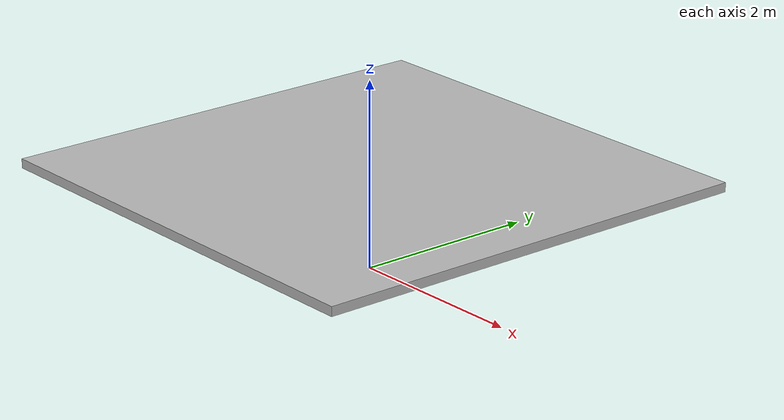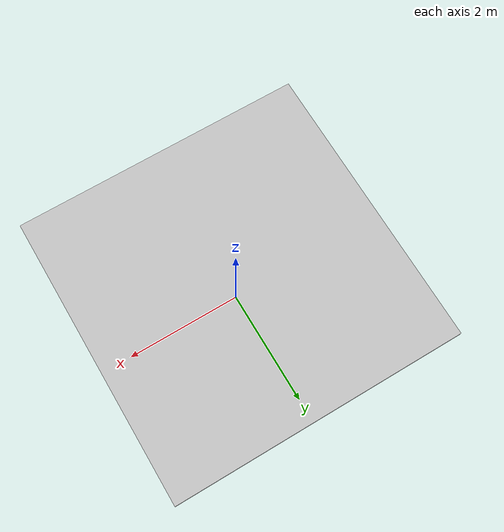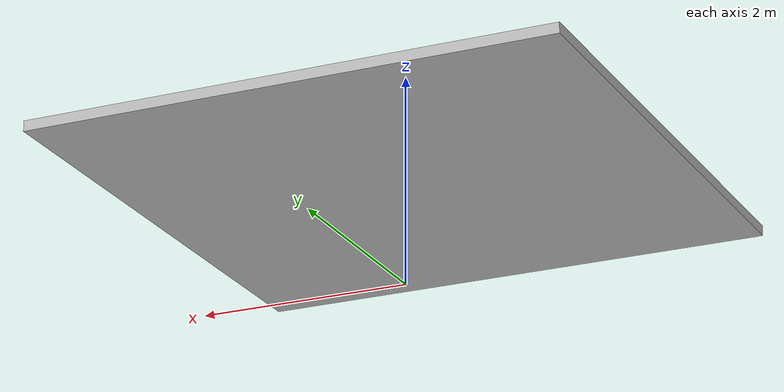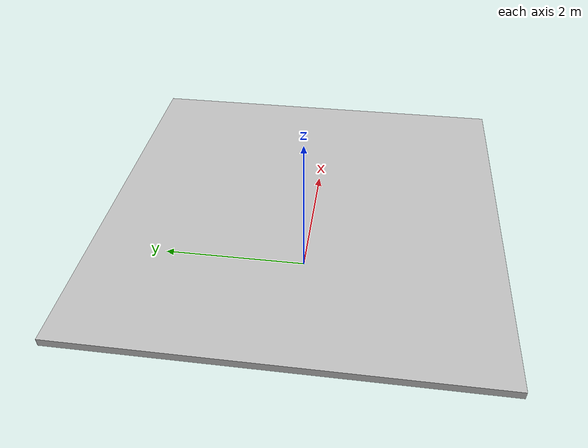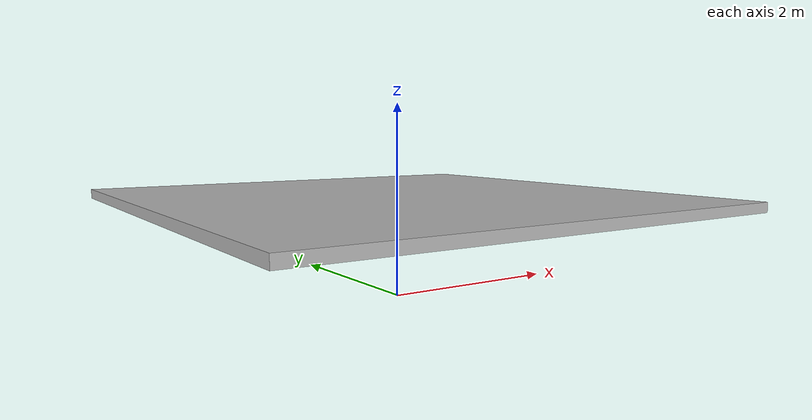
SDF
<?xml version='1.0'?>
<sdf version='1.6'>
  <model name='vortex_logo'>
    <link name='link_18'>
      <pose frame=''>0 0 0 0 -0 0</pose>
      <visual name='visual'>
        <pose frame=''>0 0 1 0 -0 0</pose>
        <geometry>
          <box>
            <size>5 5 0.1</size>
          </box>
        </geometry>
        <material>
          <script>
            <uri>model://2018/Vortex_pool/vortex_logo/materials/scripts</uri>
            <uri>model://2018/Vortex_pool/vortex_logo/materials/textures</uri>
            <name>VortexLogo</name>
          </script>
        </material>
      </visual>
    </link>
    <static>1</static>
  </model>
</sdf>
